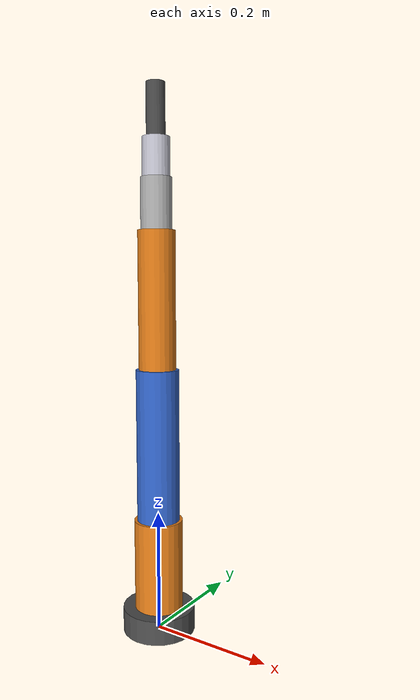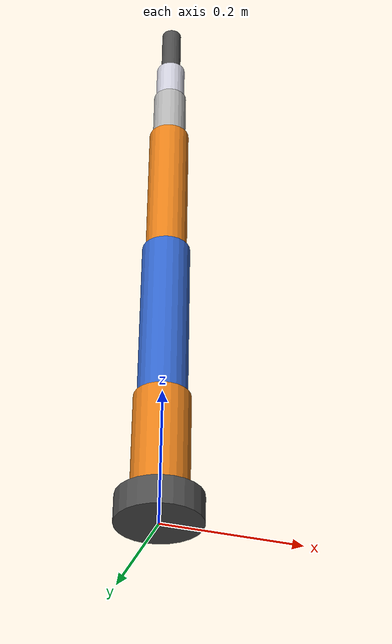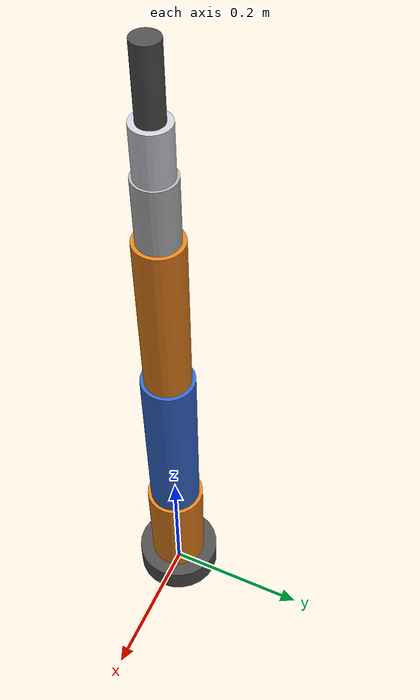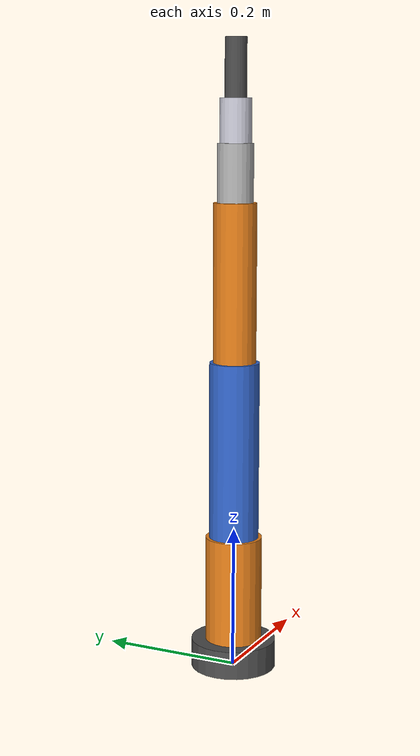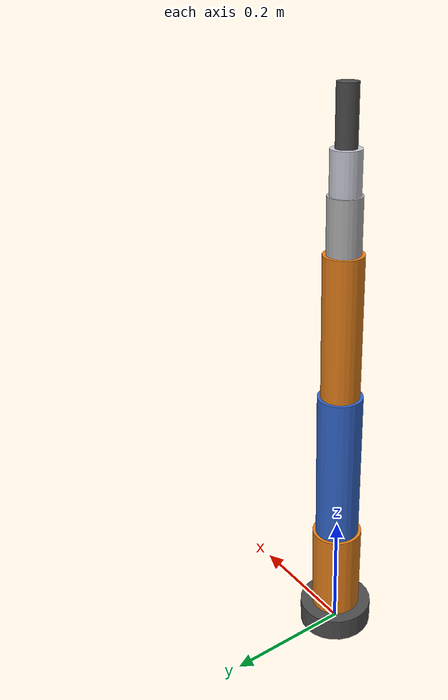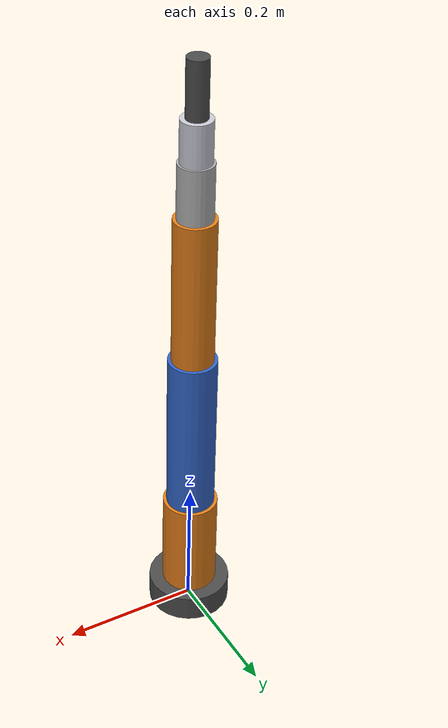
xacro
<?xml version="1.0"?>
<robot name="atlasarm6" xmlns:xacro="http://www.ros.org/wiki/xacro">

  <!--  AtlasArm-6: 6-DOF Robotic Manipulator                            -->
  <!--  Joints: base_rotation, shoulder, elbow, wrist_pitch,              -->
  <!--          wrist_roll, end_effector                                   -->

  <xacro:property name="PI" value="3.14159265359"/>

  <!-- Link dimensions (meters) -->
  <xacro:property name="base_radius" value="0.06"/>
  <xacro:property name="base_height" value="0.04"/>
  <xacro:property name="link1_length" value="0.15"/>
  <xacro:property name="link1_radius" value="0.04"/>
  <xacro:property name="link2_length" value="0.25"/>
  <xacro:property name="link2_radius" value="0.035"/>
  <xacro:property name="link3_length" value="0.22"/>
  <xacro:property name="link3_radius" value="0.03"/>
  <xacro:property name="link4_length" value="0.08"/>
  <xacro:property name="link4_radius" value="0.025"/>
  <xacro:property name="link5_length" value="0.06"/>
  <xacro:property name="link5_radius" value="0.022"/>
  <xacro:property name="ee_length" value="0.08"/>
  <xacro:property name="ee_radius" value="0.015"/>

  <!-- Masses (kg) -->
  <xacro:property name="base_mass" value="2.0"/>
  <xacro:property name="link1_mass" value="1.5"/>
  <xacro:property name="link2_mass" value="1.2"/>
  <xacro:property name="link3_mass" value="0.8"/>
  <xacro:property name="link4_mass" value="0.5"/>
  <xacro:property name="link5_mass" value="0.3"/>
  <xacro:property name="ee_mass" value="0.2"/>

  <!-- Inertia macros -->
  <xacro:macro name="cylinder_inertia" params="m r l">
    <inertial>
      <mass value="${m}"/>
      <inertia ixx="${m*(3*r*r+l*l)/12}" ixy="0" ixz="0"
               iyy="${m*(3*r*r+l*l)/12}" iyz="0"
               izz="${m*r*r/2}"/>
    </inertial>
  </xacro:macro>

  <!-- Materials -->
  <material name="dark_grey"><color rgba="0.3 0.3 0.3 1.0"/></material>
  <material name="orange"><color rgba="0.9 0.5 0.1 1.0"/></material>
  <material name="light_grey"><color rgba="0.7 0.7 0.7 1.0"/></material>
  <material name="blue"><color rgba="0.2 0.4 0.8 1.0"/></material>
  <material name="silver"><color rgba="0.8 0.8 0.85 1.0"/></material>

  <!-- ═══════ WORLD LINK (fixed) ═══════ -->
  <link name="world"/>
  <joint name="world_to_base" type="fixed">
    <parent link="world"/>
    <child link="base_link"/>
    <origin xyz="0 0 0" rpy="0 0 0"/>
  </joint>

  <!-- ═══════ BASE LINK ═══════ -->
  <link name="base_link">
    <visual>
      <origin xyz="0 0 ${base_height/2}" rpy="0 0 0"/>
      <geometry><cylinder radius="${base_radius}" length="${base_height}"/></geometry>
      <material name="dark_grey"/>
    </visual>
    <collision>
      <origin xyz="0 0 ${base_height/2}" rpy="0 0 0"/>
      <geometry><cylinder radius="${base_radius}" length="${base_height}"/></geometry>
    </collision>
    <inertial>
      <origin xyz="0 0 ${base_height/2}"/>
      <mass value="${base_mass}"/>
      <inertia ixx="${base_mass*(3*base_radius*base_radius+base_height*base_height)/12}"
               ixy="0" ixz="0"
               iyy="${base_mass*(3*base_radius*base_radius+base_height*base_height)/12}"
               iyz="0"
               izz="${base_mass*base_radius*base_radius/2}"/>
    </inertial>
  </link>

  <!-- ═══════ JOINT 1: Base Rotation (Yaw) ═══════ -->
  <joint name="joint1" type="revolute">
    <parent link="base_link"/>
    <child link="link1"/>
    <origin xyz="0 0 ${base_height}" rpy="0 0 0"/>
    <axis xyz="0 0 1"/>
    <limit lower="${-PI}" upper="${PI}" velocity="1.5" effort="50"/>
    <dynamics damping="0.5" friction="0.2"/>
  </joint>

  <!-- ═══════ LINK 1 ═══════ -->
  <link name="link1">
    <visual>
      <origin xyz="0 0 ${link1_length/2}" rpy="0 0 0"/>
      <geometry><cylinder radius="${link1_radius}" length="${link1_length}"/></geometry>
      <material name="orange"/>
    </visual>
    <collision>
      <origin xyz="0 0 ${link1_length/2}" rpy="0 0 0"/>
      <geometry><cylinder radius="${link1_radius}" length="${link1_length}"/></geometry>
    </collision>
    <xacro:cylinder_inertia m="${link1_mass}" r="${link1_radius}" l="${link1_length}"/>
  </link>

  <!-- ═══════ JOINT 2: Shoulder (Pitch) ═══════ -->
  <joint name="joint2" type="revolute">
    <parent link="link1"/>
    <child link="link2"/>
    <origin xyz="0 0 ${link1_length}" rpy="0 0 0"/>
    <axis xyz="0 1 0"/>
    <limit lower="${-PI/2}" upper="${PI/2}" velocity="1.5" effort="80"/>
    <dynamics damping="0.5" friction="0.2"/>
  </joint>

  <!-- ═══════ LINK 2 (Upper Arm) ═══════ -->
  <link name="link2">
    <visual>
      <origin xyz="0 0 ${link2_length/2}" rpy="0 0 0"/>
      <geometry><cylinder radius="${link2_radius}" length="${link2_length}"/></geometry>
      <material name="blue"/>
    </visual>
    <collision>
      <origin xyz="0 0 ${link2_length/2}" rpy="0 0 0"/>
      <geometry><cylinder radius="${link2_radius}" length="${link2_length}"/></geometry>
    </collision>
    <xacro:cylinder_inertia m="${link2_mass}" r="${link2_radius}" l="${link2_length}"/>
  </link>

  <!-- ═══════ JOINT 3: Elbow (Pitch) ═══════ -->
  <joint name="joint3" type="revolute">
    <parent link="link2"/>
    <child link="link3"/>
    <origin xyz="0 0 ${link2_length}" rpy="0 0 0"/>
    <axis xyz="0 1 0"/>
    <limit lower="${-3*PI/4}" upper="${3*PI/4}" velocity="1.5" effort="50"/>
    <dynamics damping="0.3" friction="0.15"/>
  </joint>

  <!-- ═══════ LINK 3 (Forearm) ═══════ -->
  <link name="link3">
    <visual>
      <origin xyz="0 0 ${link3_length/2}" rpy="0 0 0"/>
      <geometry><cylinder radius="${link3_radius}" length="${link3_length}"/></geometry>
      <material name="orange"/>
    </visual>
    <collision>
      <origin xyz="0 0 ${link3_length/2}" rpy="0 0 0"/>
      <geometry><cylinder radius="${link3_radius}" length="${link3_length}"/></geometry>
    </collision>
    <xacro:cylinder_inertia m="${link3_mass}" r="${link3_radius}" l="${link3_length}"/>
  </link>

  <!-- ═══════ JOINT 4: Wrist Pitch ═══════ -->
  <joint name="joint4" type="revolute">
    <parent link="link3"/>
    <child link="link4"/>
    <origin xyz="0 0 ${link3_length}" rpy="0 0 0"/>
    <axis xyz="0 1 0"/>
    <limit lower="${-2*PI/3}" upper="${2*PI/3}" velocity="2.0" effort="30"/>
    <dynamics damping="0.2" friction="0.1"/>
  </joint>

  <!-- ═══════ LINK 4 (Wrist 1) ═══════ -->
  <link name="link4">
    <visual>
      <origin xyz="0 0 ${link4_length/2}" rpy="0 0 0"/>
      <geometry><cylinder radius="${link4_radius}" length="${link4_length}"/></geometry>
      <material name="light_grey"/>
    </visual>
    <collision>
      <origin xyz="0 0 ${link4_length/2}" rpy="0 0 0"/>
      <geometry><cylinder radius="${link4_radius}" length="${link4_length}"/></geometry>
    </collision>
    <xacro:cylinder_inertia m="${link4_mass}" r="${link4_radius}" l="${link4_length}"/>
  </link>

  <!-- ═══════ JOINT 5: Wrist Roll ═══════ -->
  <joint name="joint5" type="revolute">
    <parent link="link4"/>
    <child link="link5"/>
    <origin xyz="0 0 ${link4_length}" rpy="0 0 0"/>
    <axis xyz="0 0 1"/>
    <limit lower="${-PI}" upper="${PI}" velocity="2.5" effort="20"/>
    <dynamics damping="0.1" friction="0.05"/>
  </joint>

  <!-- ═══════ LINK 5 (Wrist 2) ═══════ -->
  <link name="link5">
    <visual>
      <origin xyz="0 0 ${link5_length/2}" rpy="0 0 0"/>
      <geometry><cylinder radius="${link5_radius}" length="${link5_length}"/></geometry>
      <material name="silver"/>
    </visual>
    <collision>
      <origin xyz="0 0 ${link5_length/2}" rpy="0 0 0"/>
      <geometry><cylinder radius="${link5_radius}" length="${link5_length}"/></geometry>
    </collision>
    <xacro:cylinder_inertia m="${link5_mass}" r="${link5_radius}" l="${link5_length}"/>
  </link>

  <!-- ═══════ JOINT 6: End Effector Rotation ═══════ -->
  <joint name="joint6" type="revolute">
    <parent link="link5"/>
    <child link="end_effector_link"/>
    <origin xyz="0 0 ${link5_length}" rpy="0 0 0"/>
    <axis xyz="0 1 0"/>
    <limit lower="${-PI/2}" upper="${PI/2}" velocity="3.0" effort="10"/>
    <dynamics damping="0.05" friction="0.02"/>
  </joint>

  <!-- ═══════ END EFFECTOR LINK ═══════ -->
  <link name="end_effector_link">
    <visual>
      <origin xyz="0 0 ${ee_length/2}" rpy="0 0 0"/>
      <geometry><cylinder radius="${ee_radius}" length="${ee_length}"/></geometry>
      <material name="dark_grey"/>
    </visual>
    <collision>
      <origin xyz="0 0 ${ee_length/2}" rpy="0 0 0"/>
      <geometry><cylinder radius="${ee_radius}" length="${ee_length}"/></geometry>
    </collision>
    <xacro:cylinder_inertia m="${ee_mass}" r="${ee_radius}" l="${ee_length}"/>
  </link>

  <!-- ═══════ TOOL CENTER POINT (TCP) ═══════ -->
  <joint name="tcp_joint" type="fixed">
    <parent link="end_effector_link"/>
    <child link="tcp_link"/>
    <origin xyz="0 0 ${ee_length}" rpy="0 0 0"/>
  </joint>
  <link name="tcp_link"/>

  <!-- ═══════ ROS2_CONTROL HARDWARE INTERFACE ═══════ -->
  <ros2_control name="atlasarm6_control" type="system">
    <hardware>
      <plugin>gazebo_ros2_control/GazeboSystem</plugin>
    </hardware>
    <joint name="joint1">
      <command_interface name="position"><param name="min">-3.14159</param><param name="max">3.14159</param></command_interface>
      <state_interface name="position"/><state_interface name="velocity"/><state_interface name="effort"/>
    </joint>
    <joint name="joint2">
      <command_interface name="position"><param name="min">-1.5708</param><param name="max">1.5708</param></command_interface>
      <state_interface name="position"/><state_interface name="velocity"/><state_interface name="effort"/>
    </joint>
    <joint name="joint3">
      <command_interface name="position"><param name="min">-2.3562</param><param name="max">2.3562</param></command_interface>
      <state_interface name="position"/><state_interface name="velocity"/><state_interface name="effort"/>
    </joint>
    <joint name="joint4">
      <command_interface name="position"><param name="min">-2.0944</param><param name="max">2.0944</param></command_interface>
      <state_interface name="position"/><state_interface name="velocity"/><state_interface name="effort"/>
    </joint>
    <joint name="joint5">
      <command_interface name="position"><param name="min">-3.14159</param><param name="max">3.14159</param></command_interface>
      <state_interface name="position"/><state_interface name="velocity"/><state_interface name="effort"/>
    </joint>
    <joint name="joint6">
      <command_interface name="position"><param name="min">-1.5708</param><param name="max">1.5708</param></command_interface>
      <state_interface name="position"/><state_interface name="velocity"/><state_interface name="effort"/>
    </joint>
  </ros2_control>

  <!-- Gazebo ros2_control plugin -->
  <gazebo>
    <plugin filename="libgazebo_ros2_control.so" name="gazebo_ros2_control">
      <robot_param>robot_description</robot_param>
      <robot_param_node>robot_state_publisher</robot_param_node>
      <parameters>$(find atlasarm6_control)/config/ros2_controllers.yaml</parameters>
    </plugin>
  </gazebo>

  <!-- Gazebo link colors -->
  <gazebo reference="base_link"><material>Gazebo/DarkGrey</material></gazebo>
  <gazebo reference="link1"><material>Gazebo/Orange</material></gazebo>
  <gazebo reference="link2"><material>Gazebo/Blue</material></gazebo>
  <gazebo reference="link3"><material>Gazebo/Orange</material></gazebo>
  <gazebo reference="link4"><material>Gazebo/Grey</material></gazebo>
  <gazebo reference="link5"><material>Gazebo/White</material></gazebo>
  <gazebo reference="end_effector_link"><material>Gazebo/DarkGrey</material></gazebo>

</robot>
